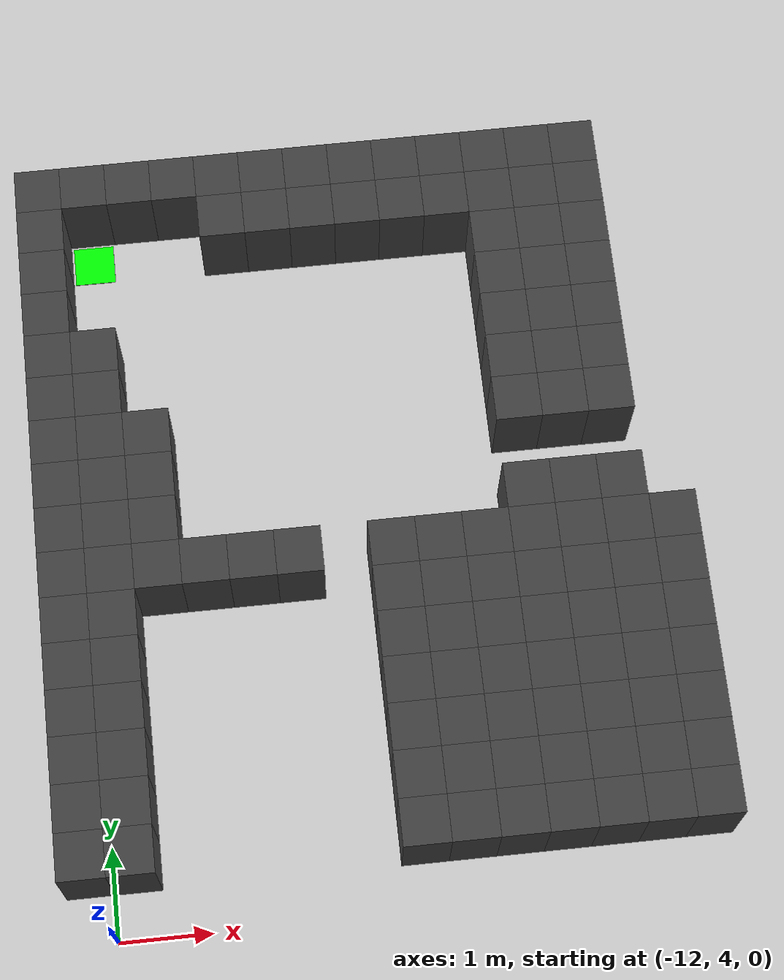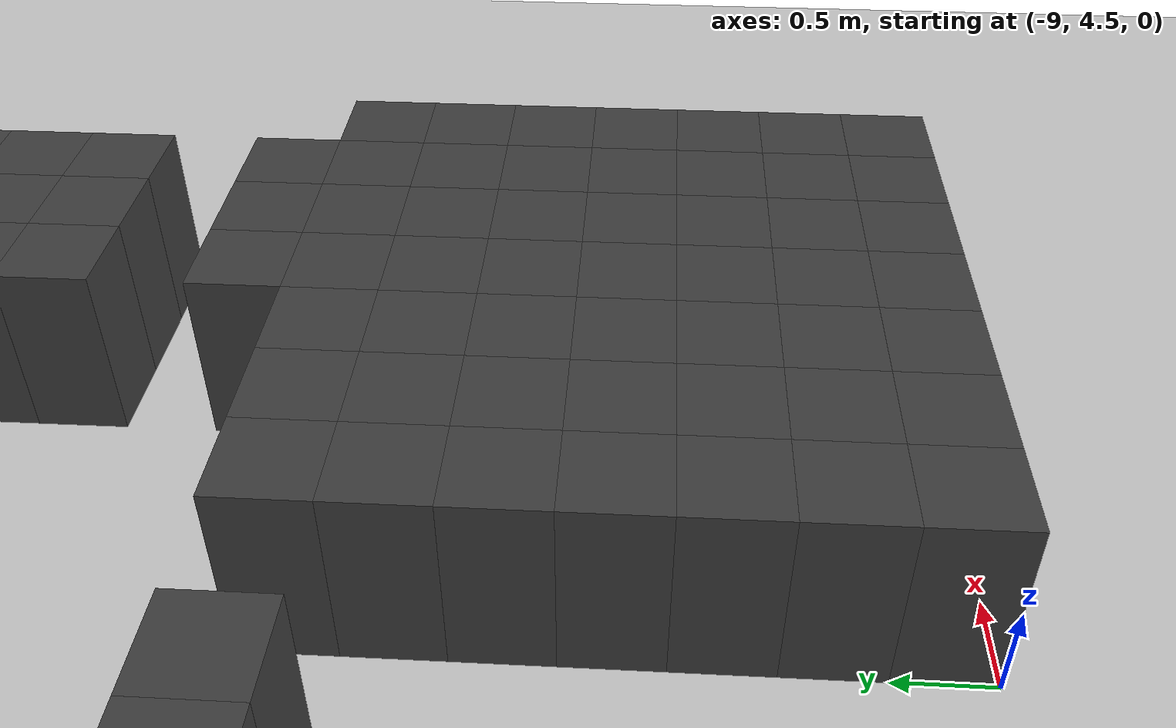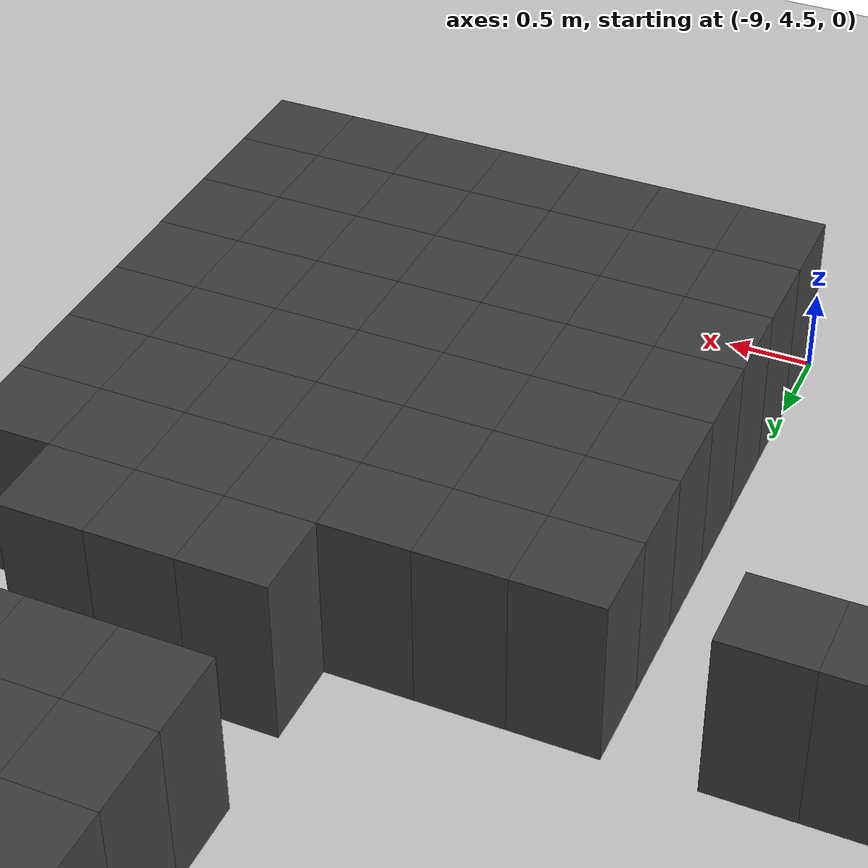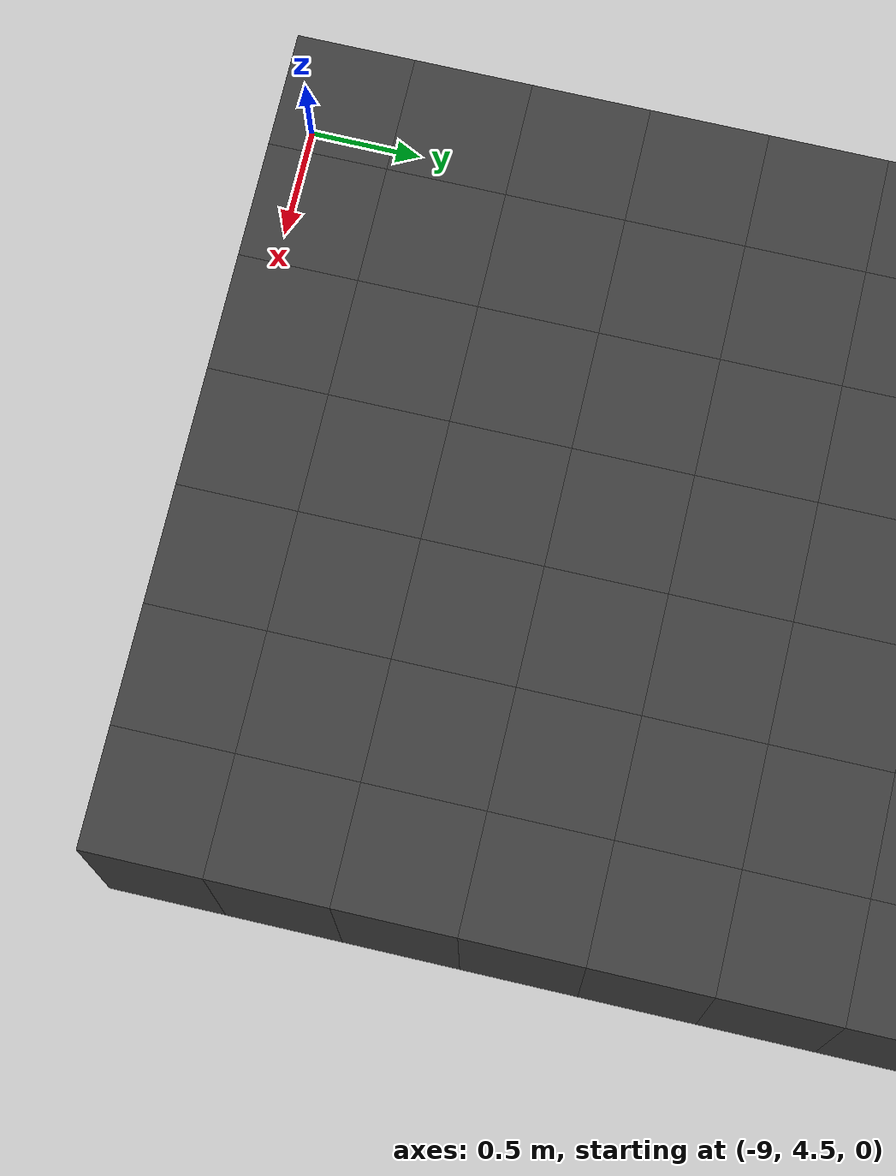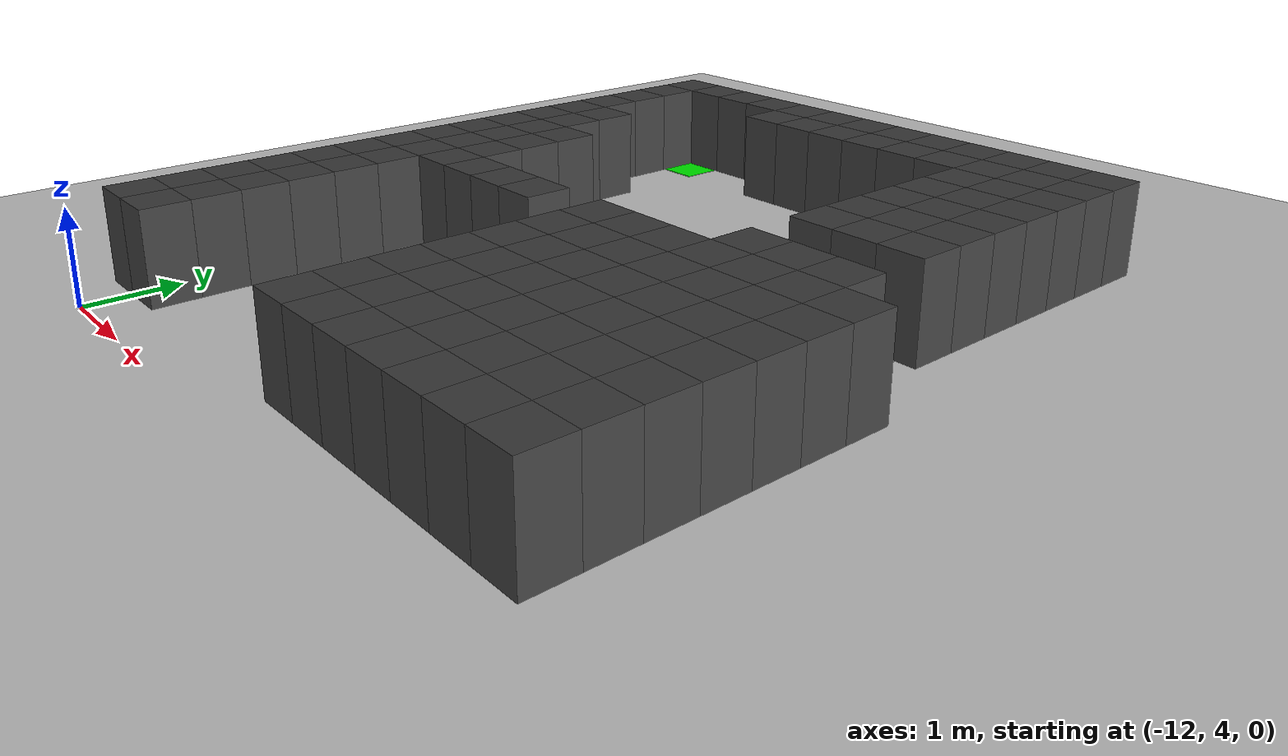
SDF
<sdf version="1.7">
 <world name="map_13820">
  <model name="ground_plane">
   <static>true</static>
   <link name="link">
    <collision name="collision">
     <geometry><plane><normal>0 0 1</normal><size>200 200</size></plane></geometry>
    </collision>
    <visual name="visual">
     <geometry><plane><normal>0 0 1</normal><size>200 200</size></plane></geometry>
     <material><ambient>0.8 0.8 0.8 1</ambient><diffuse>0.8 0.8 0.8 1</diffuse></material>
    </visual>
   </link>
  </model>
  <model name="maze_environment">
   <static>true</static>
   <link name="wall_0">
    <pose>-12.250 12.250 0.500 0 0 0</pose>
    <collision name="col"><geometry><box><size>0.5 0.5 1.0</size></box></geometry></collision>
    <visual name="vis">
     <geometry><box><size>0.5 0.5 1.0</size></box></geometry>
     <material><ambient>0.15 0.15 0.15 1</ambient><diffuse>0.25 0.25 0.25 1</diffuse></material>
    </visual>
   </link>
   <link name="wall_1">
    <pose>-11.750 12.250 0.500 0 0 0</pose>
    <collision name="col"><geometry><box><size>0.5 0.5 1.0</size></box></geometry></collision>
    <visual name="vis">
     <geometry><box><size>0.5 0.5 1.0</size></box></geometry>
     <material><ambient>0.15 0.15 0.15 1</ambient><diffuse>0.25 0.25 0.25 1</diffuse></material>
    </visual>
   </link>
   <link name="wall_2">
    <pose>-11.250 12.250 0.500 0 0 0</pose>
    <collision name="col"><geometry><box><size>0.5 0.5 1.0</size></box></geometry></collision>
    <visual name="vis">
     <geometry><box><size>0.5 0.5 1.0</size></box></geometry>
     <material><ambient>0.15 0.15 0.15 1</ambient><diffuse>0.25 0.25 0.25 1</diffuse></material>
    </visual>
   </link>
   <link name="wall_3">
    <pose>-10.750 12.250 0.500 0 0 0</pose>
    <collision name="col"><geometry><box><size>0.5 0.5 1.0</size></box></geometry></collision>
    <visual name="vis">
     <geometry><box><size>0.5 0.5 1.0</size></box></geometry>
     <material><ambient>0.15 0.15 0.15 1</ambient><diffuse>0.25 0.25 0.25 1</diffuse></material>
    </visual>
   </link>
   <link name="wall_4">
    <pose>-10.250 12.250 0.500 0 0 0</pose>
    <collision name="col"><geometry><box><size>0.5 0.5 1.0</size></box></geometry></collision>
    <visual name="vis">
     <geometry><box><size>0.5 0.5 1.0</size></box></geometry>
     <material><ambient>0.15 0.15 0.15 1</ambient><diffuse>0.25 0.25 0.25 1</diffuse></material>
    </visual>
   </link>
   <link name="wall_5">
    <pose>-9.750 12.250 0.500 0 0 0</pose>
    <collision name="col"><geometry><box><size>0.5 0.5 1.0</size></box></geometry></collision>
    <visual name="vis">
     <geometry><box><size>0.5 0.5 1.0</size></box></geometry>
     <material><ambient>0.15 0.15 0.15 1</ambient><diffuse>0.25 0.25 0.25 1</diffuse></material>
    </visual>
   </link>
   <link name="wall_6">
    <pose>-9.250 12.250 0.500 0 0 0</pose>
    <collision name="col"><geometry><box><size>0.5 0.5 1.0</size></box></geometry></collision>
    <visual name="vis">
     <geometry><box><size>0.5 0.5 1.0</size></box></geometry>
     <material><ambient>0.15 0.15 0.15 1</ambient><diffuse>0.25 0.25 0.25 1</diffuse></material>
    </visual>
   </link>
   <link name="wall_7">
    <pose>-8.750 12.250 0.500 0 0 0</pose>
    <collision name="col"><geometry><box><size>0.5 0.5 1.0</size></box></geometry></collision>
    <visual name="vis">
     <geometry><box><size>0.5 0.5 1.0</size></box></geometry>
     <material><ambient>0.15 0.15 0.15 1</ambient><diffuse>0.25 0.25 0.25 1</diffuse></material>
    </visual>
   </link>
   <link name="wall_8">
    <pose>-8.250 12.250 0.500 0 0 0</pose>
    <collision name="col"><geometry><box><size>0.5 0.5 1.0</size></box></geometry></collision>
    <visual name="vis">
     <geometry><box><size>0.5 0.5 1.0</size></box></geometry>
     <material><ambient>0.15 0.15 0.15 1</ambient><diffuse>0.25 0.25 0.25 1</diffuse></material>
    </visual>
   </link>
   <link name="wall_9">
    <pose>-7.750 12.250 0.500 0 0 0</pose>
    <collision name="col"><geometry><box><size>0.5 0.5 1.0</size></box></geometry></collision>
    <visual name="vis">
     <geometry><box><size>0.5 0.5 1.0</size></box></geometry>
     <material><ambient>0.15 0.15 0.15 1</ambient><diffuse>0.25 0.25 0.25 1</diffuse></material>
    </visual>
   </link>
   <link name="wall_10">
    <pose>-7.250 12.250 0.500 0 0 0</pose>
    <collision name="col"><geometry><box><size>0.5 0.5 1.0</size></box></geometry></collision>
    <visual name="vis">
     <geometry><box><size>0.5 0.5 1.0</size></box></geometry>
     <material><ambient>0.15 0.15 0.15 1</ambient><diffuse>0.25 0.25 0.25 1</diffuse></material>
    </visual>
   </link>
   <link name="wall_11">
    <pose>-6.750 12.250 0.500 0 0 0</pose>
    <collision name="col"><geometry><box><size>0.5 0.5 1.0</size></box></geometry></collision>
    <visual name="vis">
     <geometry><box><size>0.5 0.5 1.0</size></box></geometry>
     <material><ambient>0.15 0.15 0.15 1</ambient><diffuse>0.25 0.25 0.25 1</diffuse></material>
    </visual>
   </link>
   <link name="wall_12">
    <pose>-6.250 12.250 0.500 0 0 0</pose>
    <collision name="col"><geometry><box><size>0.5 0.5 1.0</size></box></geometry></collision>
    <visual name="vis">
     <geometry><box><size>0.5 0.5 1.0</size></box></geometry>
     <material><ambient>0.15 0.15 0.15 1</ambient><diffuse>0.25 0.25 0.25 1</diffuse></material>
    </visual>
   </link>
   <link name="wall_50">
    <pose>-12.250 11.750 0.500 0 0 0</pose>
    <collision name="col"><geometry><box><size>0.5 0.5 1.0</size></box></geometry></collision>
    <visual name="vis">
     <geometry><box><size>0.5 0.5 1.0</size></box></geometry>
     <material><ambient>0.15 0.15 0.15 1</ambient><diffuse>0.25 0.25 0.25 1</diffuse></material>
    </visual>
   </link>
   <link name="wall_51">
    <pose>-10.250 11.750 0.500 0 0 0</pose>
    <collision name="col"><geometry><box><size>0.5 0.5 1.0</size></box></geometry></collision>
    <visual name="vis">
     <geometry><box><size>0.5 0.5 1.0</size></box></geometry>
     <material><ambient>0.15 0.15 0.15 1</ambient><diffuse>0.25 0.25 0.25 1</diffuse></material>
    </visual>
   </link>
   <link name="wall_52">
    <pose>-9.750 11.750 0.500 0 0 0</pose>
    <collision name="col"><geometry><box><size>0.5 0.5 1.0</size></box></geometry></collision>
    <visual name="vis">
     <geometry><box><size>0.5 0.5 1.0</size></box></geometry>
     <material><ambient>0.15 0.15 0.15 1</ambient><diffuse>0.25 0.25 0.25 1</diffuse></material>
    </visual>
   </link>
   <link name="wall_53">
    <pose>-9.250 11.750 0.500 0 0 0</pose>
    <collision name="col"><geometry><box><size>0.5 0.5 1.0</size></box></geometry></collision>
    <visual name="vis">
     <geometry><box><size>0.5 0.5 1.0</size></box></geometry>
     <material><ambient>0.15 0.15 0.15 1</ambient><diffuse>0.25 0.25 0.25 1</diffuse></material>
    </visual>
   </link>
   <link name="wall_54">
    <pose>-8.750 11.750 0.500 0 0 0</pose>
    <collision name="col"><geometry><box><size>0.5 0.5 1.0</size></box></geometry></collision>
    <visual name="vis">
     <geometry><box><size>0.5 0.5 1.0</size></box></geometry>
     <material><ambient>0.15 0.15 0.15 1</ambient><diffuse>0.25 0.25 0.25 1</diffuse></material>
    </visual>
   </link>
   <link name="wall_55">
    <pose>-8.250 11.750 0.500 0 0 0</pose>
    <collision name="col"><geometry><box><size>0.5 0.5 1.0</size></box></geometry></collision>
    <visual name="vis">
     <geometry><box><size>0.5 0.5 1.0</size></box></geometry>
     <material><ambient>0.15 0.15 0.15 1</ambient><diffuse>0.25 0.25 0.25 1</diffuse></material>
    </visual>
   </link>
   <link name="wall_56">
    <pose>-7.750 11.750 0.500 0 0 0</pose>
    <collision name="col"><geometry><box><size>0.5 0.5 1.0</size></box></geometry></collision>
    <visual name="vis">
     <geometry><box><size>0.5 0.5 1.0</size></box></geometry>
     <material><ambient>0.15 0.15 0.15 1</ambient><diffuse>0.25 0.25 0.25 1</diffuse></material>
    </visual>
   </link>
   <link name="wall_57">
    <pose>-7.250 11.750 0.500 0 0 0</pose>
    <collision name="col"><geometry><box><size>0.5 0.5 1.0</size></box></geometry></collision>
    <visual name="vis">
     <geometry><box><size>0.5 0.5 1.0</size></box></geometry>
     <material><ambient>0.15 0.15 0.15 1</ambient><diffuse>0.25 0.25 0.25 1</diffuse></material>
    </visual>
   </link>
   <link name="wall_58">
    <pose>-6.750 11.750 0.500 0 0 0</pose>
    <collision name="col"><geometry><box><size>0.5 0.5 1.0</size></box></geometry></collision>
    <visual name="vis">
     <geometry><box><size>0.5 0.5 1.0</size></box></geometry>
     <material><ambient>0.15 0.15 0.15 1</ambient><diffuse>0.25 0.25 0.25 1</diffuse></material>
    </visual>
   </link>
   <link name="wall_59">
    <pose>-6.250 11.750 0.500 0 0 0</pose>
    <collision name="col"><geometry><box><size>0.5 0.5 1.0</size></box></geometry></collision>
    <visual name="vis">
     <geometry><box><size>0.5 0.5 1.0</size></box></geometry>
     <material><ambient>0.15 0.15 0.15 1</ambient><diffuse>0.25 0.25 0.25 1</diffuse></material>
    </visual>
   </link>
   <link name="wall_97">
    <pose>-12.250 11.250 0.500 0 0 0</pose>
    <collision name="col"><geometry><box><size>0.5 0.5 1.0</size></box></geometry></collision>
    <visual name="vis">
     <geometry><box><size>0.5 0.5 1.0</size></box></geometry>
     <material><ambient>0.15 0.15 0.15 1</ambient><diffuse>0.25 0.25 0.25 1</diffuse></material>
    </visual>
   </link>
   <link name="wall_98">
    <pose>-7.250 11.250 0.500 0 0 0</pose>
    <collision name="col"><geometry><box><size>0.5 0.5 1.0</size></box></geometry></collision>
    <visual name="vis">
     <geometry><box><size>0.5 0.5 1.0</size></box></geometry>
     <material><ambient>0.15 0.15 0.15 1</ambient><diffuse>0.25 0.25 0.25 1</diffuse></material>
    </visual>
   </link>
   <link name="wall_99">
    <pose>-6.750 11.250 0.500 0 0 0</pose>
    <collision name="col"><geometry><box><size>0.5 0.5 1.0</size></box></geometry></collision>
    <visual name="vis">
     <geometry><box><size>0.5 0.5 1.0</size></box></geometry>
     <material><ambient>0.15 0.15 0.15 1</ambient><diffuse>0.25 0.25 0.25 1</diffuse></material>
    </visual>
   </link>
   <link name="wall_100">
    <pose>-6.250 11.250 0.500 0 0 0</pose>
    <collision name="col"><geometry><box><size>0.5 0.5 1.0</size></box></geometry></collision>
    <visual name="vis">
     <geometry><box><size>0.5 0.5 1.0</size></box></geometry>
     <material><ambient>0.15 0.15 0.15 1</ambient><diffuse>0.25 0.25 0.25 1</diffuse></material>
    </visual>
   </link>
   <link name="wall_124">
    <pose>-12.250 10.750 0.500 0 0 0</pose>
    <collision name="col"><geometry><box><size>0.5 0.5 1.0</size></box></geometry></collision>
    <visual name="vis">
     <geometry><box><size>0.5 0.5 1.0</size></box></geometry>
     <material><ambient>0.15 0.15 0.15 1</ambient><diffuse>0.25 0.25 0.25 1</diffuse></material>
    </visual>
   </link>
   <link name="wall_125">
    <pose>-7.250 10.750 0.500 0 0 0</pose>
    <collision name="col"><geometry><box><size>0.5 0.5 1.0</size></box></geometry></collision>
    <visual name="vis">
     <geometry><box><size>0.5 0.5 1.0</size></box></geometry>
     <material><ambient>0.15 0.15 0.15 1</ambient><diffuse>0.25 0.25 0.25 1</diffuse></material>
    </visual>
   </link>
   <link name="wall_126">
    <pose>-6.750 10.750 0.500 0 0 0</pose>
    <collision name="col"><geometry><box><size>0.5 0.5 1.0</size></box></geometry></collision>
    <visual name="vis">
     <geometry><box><size>0.5 0.5 1.0</size></box></geometry>
     <material><ambient>0.15 0.15 0.15 1</ambient><diffuse>0.25 0.25 0.25 1</diffuse></material>
    </visual>
   </link>
   <link name="wall_127">
    <pose>-6.250 10.750 0.500 0 0 0</pose>
    <collision name="col"><geometry><box><size>0.5 0.5 1.0</size></box></geometry></collision>
    <visual name="vis">
     <geometry><box><size>0.5 0.5 1.0</size></box></geometry>
     <material><ambient>0.15 0.15 0.15 1</ambient><diffuse>0.25 0.25 0.25 1</diffuse></material>
    </visual>
   </link>
   <link name="wall_151">
    <pose>-12.250 10.250 0.500 0 0 0</pose>
    <collision name="col"><geometry><box><size>0.5 0.5 1.0</size></box></geometry></collision>
    <visual name="vis">
     <geometry><box><size>0.5 0.5 1.0</size></box></geometry>
     <material><ambient>0.15 0.15 0.15 1</ambient><diffuse>0.25 0.25 0.25 1</diffuse></material>
    </visual>
   </link>
   <link name="wall_152">
    <pose>-11.750 10.250 0.500 0 0 0</pose>
    <collision name="col"><geometry><box><size>0.5 0.5 1.0</size></box></geometry></collision>
    <visual name="vis">
     <geometry><box><size>0.5 0.5 1.0</size></box></geometry>
     <material><ambient>0.15 0.15 0.15 1</ambient><diffuse>0.25 0.25 0.25 1</diffuse></material>
    </visual>
   </link>
   <link name="wall_153">
    <pose>-7.250 10.250 0.500 0 0 0</pose>
    <collision name="col"><geometry><box><size>0.5 0.5 1.0</size></box></geometry></collision>
    <visual name="vis">
     <geometry><box><size>0.5 0.5 1.0</size></box></geometry>
     <material><ambient>0.15 0.15 0.15 1</ambient><diffuse>0.25 0.25 0.25 1</diffuse></material>
    </visual>
   </link>
   <link name="wall_154">
    <pose>-6.750 10.250 0.500 0 0 0</pose>
    <collision name="col"><geometry><box><size>0.5 0.5 1.0</size></box></geometry></collision>
    <visual name="vis">
     <geometry><box><size>0.5 0.5 1.0</size></box></geometry>
     <material><ambient>0.15 0.15 0.15 1</ambient><diffuse>0.25 0.25 0.25 1</diffuse></material>
    </visual>
   </link>
   <link name="wall_155">
    <pose>-6.250 10.250 0.500 0 0 0</pose>
    <collision name="col"><geometry><box><size>0.5 0.5 1.0</size></box></geometry></collision>
    <visual name="vis">
     <geometry><box><size>0.5 0.5 1.0</size></box></geometry>
     <material><ambient>0.15 0.15 0.15 1</ambient><diffuse>0.25 0.25 0.25 1</diffuse></material>
    </visual>
   </link>
   <link name="wall_170">
    <pose>-12.250 9.750 0.500 0 0 0</pose>
    <collision name="col"><geometry><box><size>0.5 0.5 1.0</size></box></geometry></collision>
    <visual name="vis">
     <geometry><box><size>0.5 0.5 1.0</size></box></geometry>
     <material><ambient>0.15 0.15 0.15 1</ambient><diffuse>0.25 0.25 0.25 1</diffuse></material>
    </visual>
   </link>
   <link name="wall_171">
    <pose>-11.750 9.750 0.500 0 0 0</pose>
    <collision name="col"><geometry><box><size>0.5 0.5 1.0</size></box></geometry></collision>
    <visual name="vis">
     <geometry><box><size>0.5 0.5 1.0</size></box></geometry>
     <material><ambient>0.15 0.15 0.15 1</ambient><diffuse>0.25 0.25 0.25 1</diffuse></material>
    </visual>
   </link>
   <link name="wall_172">
    <pose>-7.250 9.750 0.500 0 0 0</pose>
    <collision name="col"><geometry><box><size>0.5 0.5 1.0</size></box></geometry></collision>
    <visual name="vis">
     <geometry><box><size>0.5 0.5 1.0</size></box></geometry>
     <material><ambient>0.15 0.15 0.15 1</ambient><diffuse>0.25 0.25 0.25 1</diffuse></material>
    </visual>
   </link>
   <link name="wall_173">
    <pose>-6.750 9.750 0.500 0 0 0</pose>
    <collision name="col"><geometry><box><size>0.5 0.5 1.0</size></box></geometry></collision>
    <visual name="vis">
     <geometry><box><size>0.5 0.5 1.0</size></box></geometry>
     <material><ambient>0.15 0.15 0.15 1</ambient><diffuse>0.25 0.25 0.25 1</diffuse></material>
    </visual>
   </link>
   <link name="wall_174">
    <pose>-6.250 9.750 0.500 0 0 0</pose>
    <collision name="col"><geometry><box><size>0.5 0.5 1.0</size></box></geometry></collision>
    <visual name="vis">
     <geometry><box><size>0.5 0.5 1.0</size></box></geometry>
     <material><ambient>0.15 0.15 0.15 1</ambient><diffuse>0.25 0.25 0.25 1</diffuse></material>
    </visual>
   </link>
   <link name="wall_192">
    <pose>-12.250 9.250 0.500 0 0 0</pose>
    <collision name="col"><geometry><box><size>0.5 0.5 1.0</size></box></geometry></collision>
    <visual name="vis">
     <geometry><box><size>0.5 0.5 1.0</size></box></geometry>
     <material><ambient>0.15 0.15 0.15 1</ambient><diffuse>0.25 0.25 0.25 1</diffuse></material>
    </visual>
   </link>
   <link name="wall_193">
    <pose>-11.750 9.250 0.500 0 0 0</pose>
    <collision name="col"><geometry><box><size>0.5 0.5 1.0</size></box></geometry></collision>
    <visual name="vis">
     <geometry><box><size>0.5 0.5 1.0</size></box></geometry>
     <material><ambient>0.15 0.15 0.15 1</ambient><diffuse>0.25 0.25 0.25 1</diffuse></material>
    </visual>
   </link>
   <link name="wall_194">
    <pose>-11.250 9.250 0.500 0 0 0</pose>
    <collision name="col"><geometry><box><size>0.5 0.5 1.0</size></box></geometry></collision>
    <visual name="vis">
     <geometry><box><size>0.5 0.5 1.0</size></box></geometry>
     <material><ambient>0.15 0.15 0.15 1</ambient><diffuse>0.25 0.25 0.25 1</diffuse></material>
    </visual>
   </link>
   <link name="wall_195">
    <pose>-7.250 9.250 0.500 0 0 0</pose>
    <collision name="col"><geometry><box><size>0.5 0.5 1.0</size></box></geometry></collision>
    <visual name="vis">
     <geometry><box><size>0.5 0.5 1.0</size></box></geometry>
     <material><ambient>0.15 0.15 0.15 1</ambient><diffuse>0.25 0.25 0.25 1</diffuse></material>
    </visual>
   </link>
   <link name="wall_196">
    <pose>-6.750 9.250 0.500 0 0 0</pose>
    <collision name="col"><geometry><box><size>0.5 0.5 1.0</size></box></geometry></collision>
    <visual name="vis">
     <geometry><box><size>0.5 0.5 1.0</size></box></geometry>
     <material><ambient>0.15 0.15 0.15 1</ambient><diffuse>0.25 0.25 0.25 1</diffuse></material>
    </visual>
   </link>
   <link name="wall_197">
    <pose>-6.250 9.250 0.500 0 0 0</pose>
    <collision name="col"><geometry><box><size>0.5 0.5 1.0</size></box></geometry></collision>
    <visual name="vis">
     <geometry><box><size>0.5 0.5 1.0</size></box></geometry>
     <material><ambient>0.15 0.15 0.15 1</ambient><diffuse>0.25 0.25 0.25 1</diffuse></material>
    </visual>
   </link>
   <link name="wall_215">
    <pose>-12.250 8.750 0.500 0 0 0</pose>
    <collision name="col"><geometry><box><size>0.5 0.5 1.0</size></box></geometry></collision>
    <visual name="vis">
     <geometry><box><size>0.5 0.5 1.0</size></box></geometry>
     <material><ambient>0.15 0.15 0.15 1</ambient><diffuse>0.25 0.25 0.25 1</diffuse></material>
    </visual>
   </link>
   <link name="wall_216">
    <pose>-11.750 8.750 0.500 0 0 0</pose>
    <collision name="col"><geometry><box><size>0.5 0.5 1.0</size></box></geometry></collision>
    <visual name="vis">
     <geometry><box><size>0.5 0.5 1.0</size></box></geometry>
     <material><ambient>0.15 0.15 0.15 1</ambient><diffuse>0.25 0.25 0.25 1</diffuse></material>
    </visual>
   </link>
   <link name="wall_217">
    <pose>-11.250 8.750 0.500 0 0 0</pose>
    <collision name="col"><geometry><box><size>0.5 0.5 1.0</size></box></geometry></collision>
    <visual name="vis">
     <geometry><box><size>0.5 0.5 1.0</size></box></geometry>
     <material><ambient>0.15 0.15 0.15 1</ambient><diffuse>0.25 0.25 0.25 1</diffuse></material>
    </visual>
   </link>
   <link name="wall_244">
    <pose>-12.250 8.250 0.500 0 0 0</pose>
    <collision name="col"><geometry><box><size>0.5 0.5 1.0</size></box></geometry></collision>
    <visual name="vis">
     <geometry><box><size>0.5 0.5 1.0</size></box></geometry>
     <material><ambient>0.15 0.15 0.15 1</ambient><diffuse>0.25 0.25 0.25 1</diffuse></material>
    </visual>
   </link>
   <link name="wall_245">
    <pose>-11.750 8.250 0.500 0 0 0</pose>
    <collision name="col"><geometry><box><size>0.5 0.5 1.0</size></box></geometry></collision>
    <visual name="vis">
     <geometry><box><size>0.5 0.5 1.0</size></box></geometry>
     <material><ambient>0.15 0.15 0.15 1</ambient><diffuse>0.25 0.25 0.25 1</diffuse></material>
    </visual>
   </link>
   <link name="wall_246">
    <pose>-11.250 8.250 0.500 0 0 0</pose>
    <collision name="col"><geometry><box><size>0.5 0.5 1.0</size></box></geometry></collision>
    <visual name="vis">
     <geometry><box><size>0.5 0.5 1.0</size></box></geometry>
     <material><ambient>0.15 0.15 0.15 1</ambient><diffuse>0.25 0.25 0.25 1</diffuse></material>
    </visual>
   </link>
   <link name="wall_247">
    <pose>-7.250 8.250 0.500 0 0 0</pose>
    <collision name="col"><geometry><box><size>0.5 0.5 1.0</size></box></geometry></collision>
    <visual name="vis">
     <geometry><box><size>0.5 0.5 1.0</size></box></geometry>
     <material><ambient>0.15 0.15 0.15 1</ambient><diffuse>0.25 0.25 0.25 1</diffuse></material>
    </visual>
   </link>
   <link name="wall_248">
    <pose>-6.750 8.250 0.500 0 0 0</pose>
    <collision name="col"><geometry><box><size>0.5 0.5 1.0</size></box></geometry></collision>
    <visual name="vis">
     <geometry><box><size>0.5 0.5 1.0</size></box></geometry>
     <material><ambient>0.15 0.15 0.15 1</ambient><diffuse>0.25 0.25 0.25 1</diffuse></material>
    </visual>
   </link>
   <link name="wall_249">
    <pose>-6.250 8.250 0.500 0 0 0</pose>
    <collision name="col"><geometry><box><size>0.5 0.5 1.0</size></box></geometry></collision>
    <visual name="vis">
     <geometry><box><size>0.5 0.5 1.0</size></box></geometry>
     <material><ambient>0.15 0.15 0.15 1</ambient><diffuse>0.25 0.25 0.25 1</diffuse></material>
    </visual>
   </link>
   <link name="wall_280">
    <pose>-12.250 7.750 0.500 0 0 0</pose>
    <collision name="col"><geometry><box><size>0.5 0.5 1.0</size></box></geometry></collision>
    <visual name="vis">
     <geometry><box><size>0.5 0.5 1.0</size></box></geometry>
     <material><ambient>0.15 0.15 0.15 1</ambient><diffuse>0.25 0.25 0.25 1</diffuse></material>
    </visual>
   </link>
   <link name="wall_281">
    <pose>-11.750 7.750 0.500 0 0 0</pose>
    <collision name="col"><geometry><box><size>0.5 0.5 1.0</size></box></geometry></collision>
    <visual name="vis">
     <geometry><box><size>0.5 0.5 1.0</size></box></geometry>
     <material><ambient>0.15 0.15 0.15 1</ambient><diffuse>0.25 0.25 0.25 1</diffuse></material>
    </visual>
   </link>
   <link name="wall_282">
    <pose>-11.250 7.750 0.500 0 0 0</pose>
    <collision name="col"><geometry><box><size>0.5 0.5 1.0</size></box></geometry></collision>
    <visual name="vis">
     <geometry><box><size>0.5 0.5 1.0</size></box></geometry>
     <material><ambient>0.15 0.15 0.15 1</ambient><diffuse>0.25 0.25 0.25 1</diffuse></material>
    </visual>
   </link>
   <link name="wall_283">
    <pose>-10.750 7.750 0.500 0 0 0</pose>
    <collision name="col"><geometry><box><size>0.5 0.5 1.0</size></box></geometry></collision>
    <visual name="vis">
     <geometry><box><size>0.5 0.5 1.0</size></box></geometry>
     <material><ambient>0.15 0.15 0.15 1</ambient><diffuse>0.25 0.25 0.25 1</diffuse></material>
    </visual>
   </link>
   <link name="wall_284">
    <pose>-10.250 7.750 0.500 0 0 0</pose>
    <collision name="col"><geometry><box><size>0.5 0.5 1.0</size></box></geometry></collision>
    <visual name="vis">
     <geometry><box><size>0.5 0.5 1.0</size></box></geometry>
     <material><ambient>0.15 0.15 0.15 1</ambient><diffuse>0.25 0.25 0.25 1</diffuse></material>
    </visual>
   </link>
   <link name="wall_285">
    <pose>-9.750 7.750 0.500 0 0 0</pose>
    <collision name="col"><geometry><box><size>0.5 0.5 1.0</size></box></geometry></collision>
    <visual name="vis">
     <geometry><box><size>0.5 0.5 1.0</size></box></geometry>
     <material><ambient>0.15 0.15 0.15 1</ambient><diffuse>0.25 0.25 0.25 1</diffuse></material>
    </visual>
   </link>
   <link name="wall_286">
    <pose>-8.750 7.750 0.500 0 0 0</pose>
    <collision name="col"><geometry><box><size>0.5 0.5 1.0</size></box></geometry></collision>
    <visual name="vis">
     <geometry><box><size>0.5 0.5 1.0</size></box></geometry>
     <material><ambient>0.15 0.15 0.15 1</ambient><diffuse>0.25 0.25 0.25 1</diffuse></material>
    </visual>
   </link>
   <link name="wall_287">
    <pose>-8.250 7.750 0.500 0 0 0</pose>
    <collision name="col"><geometry><box><size>0.5 0.5 1.0</size></box></geometry></collision>
    <visual name="vis">
     <geometry><box><size>0.5 0.5 1.0</size></box></geometry>
     <material><ambient>0.15 0.15 0.15 1</ambient><diffuse>0.25 0.25 0.25 1</diffuse></material>
    </visual>
   </link>
   <link name="wall_288">
    <pose>-7.750 7.750 0.500 0 0 0</pose>
    <collision name="col"><geometry><box><size>0.5 0.5 1.0</size></box></geometry></collision>
    <visual name="vis">
     <geometry><box><size>0.5 0.5 1.0</size></box></geometry>
     <material><ambient>0.15 0.15 0.15 1</ambient><diffuse>0.25 0.25 0.25 1</diffuse></material>
    </visual>
   </link>
   <link name="wall_289">
    <pose>-7.250 7.750 0.500 0 0 0</pose>
    <collision name="col"><geometry><box><size>0.5 0.5 1.0</size></box></geometry></collision>
    <visual name="vis">
     <geometry><box><size>0.5 0.5 1.0</size></box></geometry>
     <material><ambient>0.15 0.15 0.15 1</ambient><diffuse>0.25 0.25 0.25 1</diffuse></material>
    </visual>
   </link>
   <link name="wall_290">
    <pose>-6.750 7.750 0.500 0 0 0</pose>
    <collision name="col"><geometry><box><size>0.5 0.5 1.0</size></box></geometry></collision>
    <visual name="vis">
     <geometry><box><size>0.5 0.5 1.0</size></box></geometry>
     <material><ambient>0.15 0.15 0.15 1</ambient><diffuse>0.25 0.25 0.25 1</diffuse></material>
    </visual>
   </link>
   <link name="wall_291">
    <pose>-6.250 7.750 0.500 0 0 0</pose>
    <collision name="col"><geometry><box><size>0.5 0.5 1.0</size></box></geometry></collision>
    <visual name="vis">
     <geometry><box><size>0.5 0.5 1.0</size></box></geometry>
     <material><ambient>0.15 0.15 0.15 1</ambient><diffuse>0.25 0.25 0.25 1</diffuse></material>
    </visual>
   </link>
   <link name="wall_292">
    <pose>-5.750 7.750 0.500 0 0 0</pose>
    <collision name="col"><geometry><box><size>0.5 0.5 1.0</size></box></geometry></collision>
    <visual name="vis">
     <geometry><box><size>0.5 0.5 1.0</size></box></geometry>
     <material><ambient>0.15 0.15 0.15 1</ambient><diffuse>0.25 0.25 0.25 1</diffuse></material>
    </visual>
   </link>
   <link name="wall_319">
    <pose>-12.250 7.250 0.500 0 0 0</pose>
    <collision name="col"><geometry><box><size>0.5 0.5 1.0</size></box></geometry></collision>
    <visual name="vis">
     <geometry><box><size>0.5 0.5 1.0</size></box></geometry>
     <material><ambient>0.15 0.15 0.15 1</ambient><diffuse>0.25 0.25 0.25 1</diffuse></material>
    </visual>
   </link>
   <link name="wall_320">
    <pose>-11.750 7.250 0.500 0 0 0</pose>
    <collision name="col"><geometry><box><size>0.5 0.5 1.0</size></box></geometry></collision>
    <visual name="vis">
     <geometry><box><size>0.5 0.5 1.0</size></box></geometry>
     <material><ambient>0.15 0.15 0.15 1</ambient><diffuse>0.25 0.25 0.25 1</diffuse></material>
    </visual>
   </link>
   <link name="wall_321">
    <pose>-8.750 7.250 0.500 0 0 0</pose>
    <collision name="col"><geometry><box><size>0.5 0.5 1.0</size></box></geometry></collision>
    <visual name="vis">
     <geometry><box><size>0.5 0.5 1.0</size></box></geometry>
     <material><ambient>0.15 0.15 0.15 1</ambient><diffuse>0.25 0.25 0.25 1</diffuse></material>
    </visual>
   </link>
   <link name="wall_322">
    <pose>-8.250 7.250 0.500 0 0 0</pose>
    <collision name="col"><geometry><box><size>0.5 0.5 1.0</size></box></geometry></collision>
    <visual name="vis">
     <geometry><box><size>0.5 0.5 1.0</size></box></geometry>
     <material><ambient>0.15 0.15 0.15 1</ambient><diffuse>0.25 0.25 0.25 1</diffuse></material>
    </visual>
   </link>
   <link name="wall_323">
    <pose>-7.750 7.250 0.500 0 0 0</pose>
    <collision name="col"><geometry><box><size>0.5 0.5 1.0</size></box></geometry></collision>
    <visual name="vis">
     <geometry><box><size>0.5 0.5 1.0</size></box></geometry>
     <material><ambient>0.15 0.15 0.15 1</ambient><diffuse>0.25 0.25 0.25 1</diffuse></material>
    </visual>
   </link>
   <link name="wall_324">
    <pose>-7.250 7.250 0.500 0 0 0</pose>
    <collision name="col"><geometry><box><size>0.5 0.5 1.0</size></box></geometry></collision>
    <visual name="vis">
     <geometry><box><size>0.5 0.5 1.0</size></box></geometry>
     <material><ambient>0.15 0.15 0.15 1</ambient><diffuse>0.25 0.25 0.25 1</diffuse></material>
    </visual>
   </link>
   <link name="wall_325">
    <pose>-6.750 7.250 0.500 0 0 0</pose>
    <collision name="col"><geometry><box><size>0.5 0.5 1.0</size></box></geometry></collision>
    <visual name="vis">
     <geometry><box><size>0.5 0.5 1.0</size></box></geometry>
     <material><ambient>0.15 0.15 0.15 1</ambient><diffuse>0.25 0.25 0.25 1</diffuse></material>
    </visual>
   </link>
   <link name="wall_326">
    <pose>-6.250 7.250 0.500 0 0 0</pose>
    <collision name="col"><geometry><box><size>0.5 0.5 1.0</size></box></geometry></collision>
    <visual name="vis">
     <geometry><box><size>0.5 0.5 1.0</size></box></geometry>
     <material><ambient>0.15 0.15 0.15 1</ambient><diffuse>0.25 0.25 0.25 1</diffuse></material>
    </visual>
   </link>
   <link name="wall_327">
    <pose>-5.750 7.250 0.500 0 0 0</pose>
    <collision name="col"><geometry><box><size>0.5 0.5 1.0</size></box></geometry></collision>
    <visual name="vis">
     <geometry><box><size>0.5 0.5 1.0</size></box></geometry>
     <material><ambient>0.15 0.15 0.15 1</ambient><diffuse>0.25 0.25 0.25 1</diffuse></material>
    </visual>
   </link>
   <link name="wall_354">
    <pose>-12.250 6.750 0.500 0 0 0</pose>
    <collision name="col"><geometry><box><size>0.5 0.5 1.0</size></box></geometry></collision>
    <visual name="vis">
     <geometry><box><size>0.5 0.5 1.0</size></box></geometry>
     <material><ambient>0.15 0.15 0.15 1</ambient><diffuse>0.25 0.25 0.25 1</diffuse></material>
    </visual>
   </link>
   <link name="wall_355">
    <pose>-11.750 6.750 0.500 0 0 0</pose>
    <collision name="col"><geometry><box><size>0.5 0.5 1.0</size></box></geometry></collision>
    <visual name="vis">
     <geometry><box><size>0.5 0.5 1.0</size></box></geometry>
     <material><ambient>0.15 0.15 0.15 1</ambient><diffuse>0.25 0.25 0.25 1</diffuse></material>
    </visual>
   </link>
   <link name="wall_356">
    <pose>-8.750 6.750 0.500 0 0 0</pose>
    <collision name="col"><geometry><box><size>0.5 0.5 1.0</size></box></geometry></collision>
    <visual name="vis">
     <geometry><box><size>0.5 0.5 1.0</size></box></geometry>
     <material><ambient>0.15 0.15 0.15 1</ambient><diffuse>0.25 0.25 0.25 1</diffuse></material>
    </visual>
   </link>
   <link name="wall_357">
    <pose>-8.250 6.750 0.500 0 0 0</pose>
    <collision name="col"><geometry><box><size>0.5 0.5 1.0</size></box></geometry></collision>
    <visual name="vis">
     <geometry><box><size>0.5 0.5 1.0</size></box></geometry>
     <material><ambient>0.15 0.15 0.15 1</ambient><diffuse>0.25 0.25 0.25 1</diffuse></material>
    </visual>
   </link>
   <link name="wall_358">
    <pose>-7.750 6.750 0.500 0 0 0</pose>
    <collision name="col"><geometry><box><size>0.5 0.5 1.0</size></box></geometry></collision>
    <visual name="vis">
     <geometry><box><size>0.5 0.5 1.0</size></box></geometry>
     <material><ambient>0.15 0.15 0.15 1</ambient><diffuse>0.25 0.25 0.25 1</diffuse></material>
    </visual>
   </link>
   <link name="wall_359">
    <pose>-7.250 6.750 0.500 0 0 0</pose>
    <collision name="col"><geometry><box><size>0.5 0.5 1.0</size></box></geometry></collision>
    <visual name="vis">
     <geometry><box><size>0.5 0.5 1.0</size></box></geometry>
     <material><ambient>0.15 0.15 0.15 1</ambient><diffuse>0.25 0.25 0.25 1</diffuse></material>
    </visual>
   </link>
   <link name="wall_360">
    <pose>-6.750 6.750 0.500 0 0 0</pose>
    <collision name="col"><geometry><box><size>0.5 0.5 1.0</size></box></geometry></collision>
    <visual name="vis">
     <geometry><box><size>0.5 0.5 1.0</size></box></geometry>
     <material><ambient>0.15 0.15 0.15 1</ambient><diffuse>0.25 0.25 0.25 1</diffuse></material>
    </visual>
   </link>
   <link name="wall_361">
    <pose>-6.250 6.750 0.500 0 0 0</pose>
    <collision name="col"><geometry><box><size>0.5 0.5 1.0</size></box></geometry></collision>
    <visual name="vis">
     <geometry><box><size>0.5 0.5 1.0</size></box></geometry>
     <material><ambient>0.15 0.15 0.15 1</ambient><diffuse>0.25 0.25 0.25 1</diffuse></material>
    </visual>
   </link>
   <link name="wall_362">
    <pose>-5.750 6.750 0.500 0 0 0</pose>
    <collision name="col"><geometry><box><size>0.5 0.5 1.0</size></box></geometry></collision>
    <visual name="vis">
     <geometry><box><size>0.5 0.5 1.0</size></box></geometry>
     <material><ambient>0.15 0.15 0.15 1</ambient><diffuse>0.25 0.25 0.25 1</diffuse></material>
    </visual>
   </link>
   <link name="wall_386">
    <pose>-12.250 6.250 0.500 0 0 0</pose>
    <collision name="col"><geometry><box><size>0.5 0.5 1.0</size></box></geometry></collision>
    <visual name="vis">
     <geometry><box><size>0.5 0.5 1.0</size></box></geometry>
     <material><ambient>0.15 0.15 0.15 1</ambient><diffuse>0.25 0.25 0.25 1</diffuse></material>
    </visual>
   </link>
   <link name="wall_387">
    <pose>-11.750 6.250 0.500 0 0 0</pose>
    <collision name="col"><geometry><box><size>0.5 0.5 1.0</size></box></geometry></collision>
    <visual name="vis">
     <geometry><box><size>0.5 0.5 1.0</size></box></geometry>
     <material><ambient>0.15 0.15 0.15 1</ambient><diffuse>0.25 0.25 0.25 1</diffuse></material>
    </visual>
   </link>
   <link name="wall_388">
    <pose>-8.750 6.250 0.500 0 0 0</pose>
    <collision name="col"><geometry><box><size>0.5 0.5 1.0</size></box></geometry></collision>
    <visual name="vis">
     <geometry><box><size>0.5 0.5 1.0</size></box></geometry>
     <material><ambient>0.15 0.15 0.15 1</ambient><diffuse>0.25 0.25 0.25 1</diffuse></material>
    </visual>
   </link>
   <link name="wall_389">
    <pose>-8.250 6.250 0.500 0 0 0</pose>
    <collision name="col"><geometry><box><size>0.5 0.5 1.0</size></box></geometry></collision>
    <visual name="vis">
     <geometry><box><size>0.5 0.5 1.0</size></box></geometry>
     <material><ambient>0.15 0.15 0.15 1</ambient><diffuse>0.25 0.25 0.25 1</diffuse></material>
    </visual>
   </link>
   <link name="wall_390">
    <pose>-7.750 6.250 0.500 0 0 0</pose>
    <collision name="col"><geometry><box><size>0.5 0.5 1.0</size></box></geometry></collision>
    <visual name="vis">
     <geometry><box><size>0.5 0.5 1.0</size></box></geometry>
     <material><ambient>0.15 0.15 0.15 1</ambient><diffuse>0.25 0.25 0.25 1</diffuse></material>
    </visual>
   </link>
   <link name="wall_391">
    <pose>-7.250 6.250 0.500 0 0 0</pose>
    <collision name="col"><geometry><box><size>0.5 0.5 1.0</size></box></geometry></collision>
    <visual name="vis">
     <geometry><box><size>0.5 0.5 1.0</size></box></geometry>
     <material><ambient>0.15 0.15 0.15 1</ambient><diffuse>0.25 0.25 0.25 1</diffuse></material>
    </visual>
   </link>
   <link name="wall_392">
    <pose>-6.750 6.250 0.500 0 0 0</pose>
    <collision name="col"><geometry><box><size>0.5 0.5 1.0</size></box></geometry></collision>
    <visual name="vis">
     <geometry><box><size>0.5 0.5 1.0</size></box></geometry>
     <material><ambient>0.15 0.15 0.15 1</ambient><diffuse>0.25 0.25 0.25 1</diffuse></material>
    </visual>
   </link>
   <link name="wall_393">
    <pose>-6.250 6.250 0.500 0 0 0</pose>
    <collision name="col"><geometry><box><size>0.5 0.5 1.0</size></box></geometry></collision>
    <visual name="vis">
     <geometry><box><size>0.5 0.5 1.0</size></box></geometry>
     <material><ambient>0.15 0.15 0.15 1</ambient><diffuse>0.25 0.25 0.25 1</diffuse></material>
    </visual>
   </link>
   <link name="wall_394">
    <pose>-5.750 6.250 0.500 0 0 0</pose>
    <collision name="col"><geometry><box><size>0.5 0.5 1.0</size></box></geometry></collision>
    <visual name="vis">
     <geometry><box><size>0.5 0.5 1.0</size></box></geometry>
     <material><ambient>0.15 0.15 0.15 1</ambient><diffuse>0.25 0.25 0.25 1</diffuse></material>
    </visual>
   </link>
   <link name="wall_418">
    <pose>-12.250 5.750 0.500 0 0 0</pose>
    <collision name="col"><geometry><box><size>0.5 0.5 1.0</size></box></geometry></collision>
    <visual name="vis">
     <geometry><box><size>0.5 0.5 1.0</size></box></geometry>
     <material><ambient>0.15 0.15 0.15 1</ambient><diffuse>0.25 0.25 0.25 1</diffuse></material>
    </visual>
   </link>
   <link name="wall_419">
    <pose>-11.750 5.750 0.500 0 0 0</pose>
    <collision name="col"><geometry><box><size>0.5 0.5 1.0</size></box></geometry></collision>
    <visual name="vis">
     <geometry><box><size>0.5 0.5 1.0</size></box></geometry>
     <material><ambient>0.15 0.15 0.15 1</ambient><diffuse>0.25 0.25 0.25 1</diffuse></material>
    </visual>
   </link>
   <link name="wall_420">
    <pose>-8.750 5.750 0.500 0 0 0</pose>
    <collision name="col"><geometry><box><size>0.5 0.5 1.0</size></box></geometry></collision>
    <visual name="vis">
     <geometry><box><size>0.5 0.5 1.0</size></box></geometry>
     <material><ambient>0.15 0.15 0.15 1</ambient><diffuse>0.25 0.25 0.25 1</diffuse></material>
    </visual>
   </link>
   <link name="wall_421">
    <pose>-8.250 5.750 0.500 0 0 0</pose>
    <collision name="col"><geometry><box><size>0.5 0.5 1.0</size></box></geometry></collision>
    <visual name="vis">
     <geometry><box><size>0.5 0.5 1.0</size></box></geometry>
     <material><ambient>0.15 0.15 0.15 1</ambient><diffuse>0.25 0.25 0.25 1</diffuse></material>
    </visual>
   </link>
   <link name="wall_422">
    <pose>-7.750 5.750 0.500 0 0 0</pose>
    <collision name="col"><geometry><box><size>0.5 0.5 1.0</size></box></geometry></collision>
    <visual name="vis">
     <geometry><box><size>0.5 0.5 1.0</size></box></geometry>
     <material><ambient>0.15 0.15 0.15 1</ambient><diffuse>0.25 0.25 0.25 1</diffuse></material>
    </visual>
   </link>
   <link name="wall_423">
    <pose>-7.250 5.750 0.500 0 0 0</pose>
    <collision name="col"><geometry><box><size>0.5 0.5 1.0</size></box></geometry></collision>
    <visual name="vis">
     <geometry><box><size>0.5 0.5 1.0</size></box></geometry>
     <material><ambient>0.15 0.15 0.15 1</ambient><diffuse>0.25 0.25 0.25 1</diffuse></material>
    </visual>
   </link>
   <link name="wall_424">
    <pose>-6.750 5.750 0.500 0 0 0</pose>
    <collision name="col"><geometry><box><size>0.5 0.5 1.0</size></box></geometry></collision>
    <visual name="vis">
     <geometry><box><size>0.5 0.5 1.0</size></box></geometry>
     <material><ambient>0.15 0.15 0.15 1</ambient><diffuse>0.25 0.25 0.25 1</diffuse></material>
    </visual>
   </link>
   <link name="wall_425">
    <pose>-6.250 5.750 0.500 0 0 0</pose>
    <collision name="col"><geometry><box><size>0.5 0.5 1.0</size></box></geometry></collision>
    <visual name="vis">
     <geometry><box><size>0.5 0.5 1.0</size></box></geometry>
     <material><ambient>0.15 0.15 0.15 1</ambient><diffuse>0.25 0.25 0.25 1</diffuse></material>
    </visual>
   </link>
   <link name="wall_426">
    <pose>-5.750 5.750 0.500 0 0 0</pose>
    <collision name="col"><geometry><box><size>0.5 0.5 1.0</size></box></geometry></collision>
    <visual name="vis">
     <geometry><box><size>0.5 0.5 1.0</size></box></geometry>
     <material><ambient>0.15 0.15 0.15 1</ambient><diffuse>0.25 0.25 0.25 1</diffuse></material>
    </visual>
   </link>
   <link name="wall_451">
    <pose>-12.250 5.250 0.500 0 0 0</pose>
    <collision name="col"><geometry><box><size>0.5 0.5 1.0</size></box></geometry></collision>
    <visual name="vis">
     <geometry><box><size>0.5 0.5 1.0</size></box></geometry>
     <material><ambient>0.15 0.15 0.15 1</ambient><diffuse>0.25 0.25 0.25 1</diffuse></material>
    </visual>
   </link>
   <link name="wall_452">
    <pose>-11.750 5.250 0.500 0 0 0</pose>
    <collision name="col"><geometry><box><size>0.5 0.5 1.0</size></box></geometry></collision>
    <visual name="vis">
     <geometry><box><size>0.5 0.5 1.0</size></box></geometry>
     <material><ambient>0.15 0.15 0.15 1</ambient><diffuse>0.25 0.25 0.25 1</diffuse></material>
    </visual>
   </link>
   <link name="wall_453">
    <pose>-8.750 5.250 0.500 0 0 0</pose>
    <collision name="col"><geometry><box><size>0.5 0.5 1.0</size></box></geometry></collision>
    <visual name="vis">
     <geometry><box><size>0.5 0.5 1.0</size></box></geometry>
     <material><ambient>0.15 0.15 0.15 1</ambient><diffuse>0.25 0.25 0.25 1</diffuse></material>
    </visual>
   </link>
   <link name="wall_454">
    <pose>-8.250 5.250 0.500 0 0 0</pose>
    <collision name="col"><geometry><box><size>0.5 0.5 1.0</size></box></geometry></collision>
    <visual name="vis">
     <geometry><box><size>0.5 0.5 1.0</size></box></geometry>
     <material><ambient>0.15 0.15 0.15 1</ambient><diffuse>0.25 0.25 0.25 1</diffuse></material>
    </visual>
   </link>
   <link name="wall_455">
    <pose>-7.750 5.250 0.500 0 0 0</pose>
    <collision name="col"><geometry><box><size>0.5 0.5 1.0</size></box></geometry></collision>
    <visual name="vis">
     <geometry><box><size>0.5 0.5 1.0</size></box></geometry>
     <material><ambient>0.15 0.15 0.15 1</ambient><diffuse>0.25 0.25 0.25 1</diffuse></material>
    </visual>
   </link>
   <link name="wall_456">
    <pose>-7.250 5.250 0.500 0 0 0</pose>
    <collision name="col"><geometry><box><size>0.5 0.5 1.0</size></box></geometry></collision>
    <visual name="vis">
     <geometry><box><size>0.5 0.5 1.0</size></box></geometry>
     <material><ambient>0.15 0.15 0.15 1</ambient><diffuse>0.25 0.25 0.25 1</diffuse></material>
    </visual>
   </link>
   <link name="wall_457">
    <pose>-6.750 5.250 0.500 0 0 0</pose>
    <collision name="col"><geometry><box><size>0.5 0.5 1.0</size></box></geometry></collision>
    <visual name="vis">
     <geometry><box><size>0.5 0.5 1.0</size></box></geometry>
     <material><ambient>0.15 0.15 0.15 1</ambient><diffuse>0.25 0.25 0.25 1</diffuse></material>
    </visual>
   </link>
   <link name="wall_458">
    <pose>-6.250 5.250 0.500 0 0 0</pose>
    <collision name="col"><geometry><box><size>0.5 0.5 1.0</size></box></geometry></collision>
    <visual name="vis">
     <geometry><box><size>0.5 0.5 1.0</size></box></geometry>
     <material><ambient>0.15 0.15 0.15 1</ambient><diffuse>0.25 0.25 0.25 1</diffuse></material>
    </visual>
   </link>
   <link name="wall_459">
    <pose>-5.750 5.250 0.500 0 0 0</pose>
    <collision name="col"><geometry><box><size>0.5 0.5 1.0</size></box></geometry></collision>
    <visual name="vis">
     <geometry><box><size>0.5 0.5 1.0</size></box></geometry>
     <material><ambient>0.15 0.15 0.15 1</ambient><diffuse>0.25 0.25 0.25 1</diffuse></material>
    </visual>
   </link>
   <link name="wall_485">
    <pose>-12.250 4.750 0.500 0 0 0</pose>
    <collision name="col"><geometry><box><size>0.5 0.5 1.0</size></box></geometry></collision>
    <visual name="vis">
     <geometry><box><size>0.5 0.5 1.0</size></box></geometry>
     <material><ambient>0.15 0.15 0.15 1</ambient><diffuse>0.25 0.25 0.25 1</diffuse></material>
    </visual>
   </link>
   <link name="wall_486">
    <pose>-11.750 4.750 0.500 0 0 0</pose>
    <collision name="col"><geometry><box><size>0.5 0.5 1.0</size></box></geometry></collision>
    <visual name="vis">
     <geometry><box><size>0.5 0.5 1.0</size></box></geometry>
     <material><ambient>0.15 0.15 0.15 1</ambient><diffuse>0.25 0.25 0.25 1</diffuse></material>
    </visual>
   </link>
   <link name="wall_487">
    <pose>-8.750 4.750 0.500 0 0 0</pose>
    <collision name="col"><geometry><box><size>0.5 0.5 1.0</size></box></geometry></collision>
    <visual name="vis">
     <geometry><box><size>0.5 0.5 1.0</size></box></geometry>
     <material><ambient>0.15 0.15 0.15 1</ambient><diffuse>0.25 0.25 0.25 1</diffuse></material>
    </visual>
   </link>
   <link name="wall_488">
    <pose>-8.250 4.750 0.500 0 0 0</pose>
    <collision name="col"><geometry><box><size>0.5 0.5 1.0</size></box></geometry></collision>
    <visual name="vis">
     <geometry><box><size>0.5 0.5 1.0</size></box></geometry>
     <material><ambient>0.15 0.15 0.15 1</ambient><diffuse>0.25 0.25 0.25 1</diffuse></material>
    </visual>
   </link>
   <link name="wall_489">
    <pose>-7.750 4.750 0.500 0 0 0</pose>
    <collision name="col"><geometry><box><size>0.5 0.5 1.0</size></box></geometry></collision>
    <visual name="vis">
     <geometry><box><size>0.5 0.5 1.0</size></box></geometry>
     <material><ambient>0.15 0.15 0.15 1</ambient><diffuse>0.25 0.25 0.25 1</diffuse></material>
    </visual>
   </link>
   <link name="wall_490">
    <pose>-7.250 4.750 0.500 0 0 0</pose>
    <collision name="col"><geometry><box><size>0.5 0.5 1.0</size></box></geometry></collision>
    <visual name="vis">
     <geometry><box><size>0.5 0.5 1.0</size></box></geometry>
     <material><ambient>0.15 0.15 0.15 1</ambient><diffuse>0.25 0.25 0.25 1</diffuse></material>
    </visual>
   </link>
   <link name="wall_491">
    <pose>-6.750 4.750 0.500 0 0 0</pose>
    <collision name="col"><geometry><box><size>0.5 0.5 1.0</size></box></geometry></collision>
    <visual name="vis">
     <geometry><box><size>0.5 0.5 1.0</size></box></geometry>
     <material><ambient>0.15 0.15 0.15 1</ambient><diffuse>0.25 0.25 0.25 1</diffuse></material>
    </visual>
   </link>
   <link name="wall_492">
    <pose>-6.250 4.750 0.500 0 0 0</pose>
    <collision name="col"><geometry><box><size>0.5 0.5 1.0</size></box></geometry></collision>
    <visual name="vis">
     <geometry><box><size>0.5 0.5 1.0</size></box></geometry>
     <material><ambient>0.15 0.15 0.15 1</ambient><diffuse>0.25 0.25 0.25 1</diffuse></material>
    </visual>
   </link>
   <link name="wall_493">
    <pose>-5.750 4.750 0.500 0 0 0</pose>
    <collision name="col"><geometry><box><size>0.5 0.5 1.0</size></box></geometry></collision>
    <visual name="vis">
     <geometry><box><size>0.5 0.5 1.0</size></box></geometry>
     <material><ambient>0.15 0.15 0.15 1</ambient><diffuse>0.25 0.25 0.25 1</diffuse></material>
    </visual>
   </link>
   <link name="start_zone">
    <pose>-11.750 11.750 0.005 0 0 0</pose>
    <visual name="vis">
     <geometry><box><size>0.45 0.45 0.01</size></box></geometry>
     <material>
      <ambient>0.0 1.0 0.0 1</ambient>
      <diffuse>0.0 1.0 0.0 1</diffuse>
      <emissive>0.00 0.60 0.00 1</emissive>
     </material>
    </visual>
   </link>
  </model>
 </world>
</sdf>
